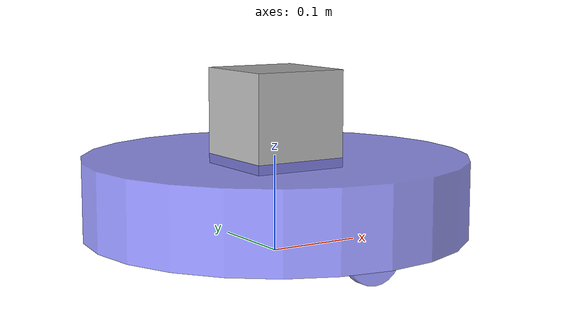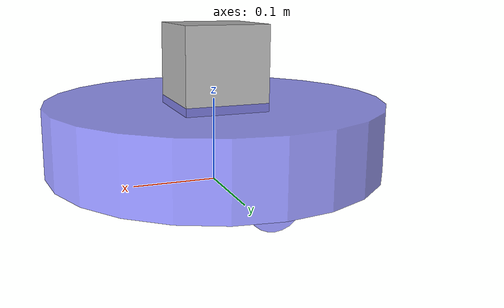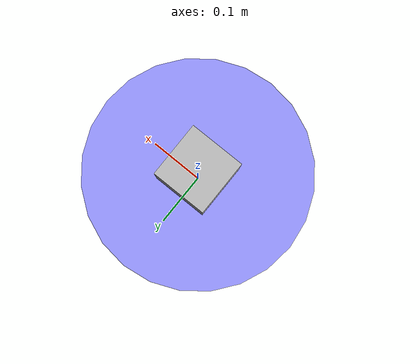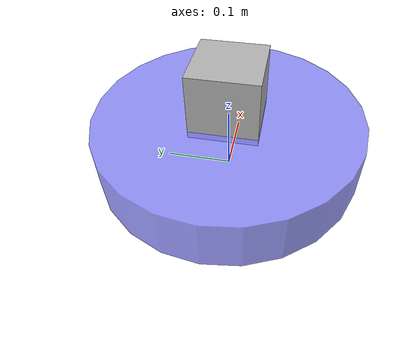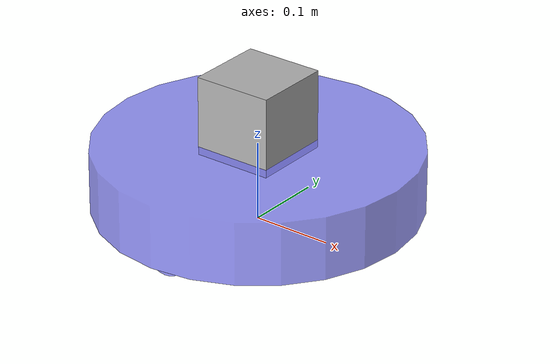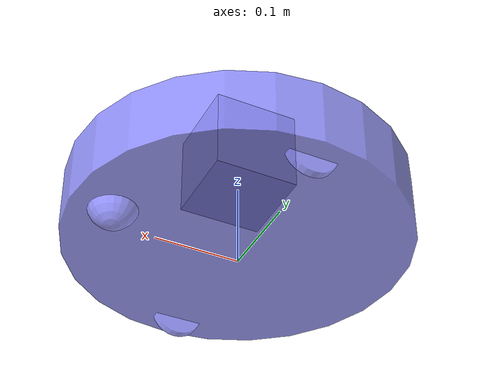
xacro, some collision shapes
<?xml version="1.0"?>
<robot name="car_robot_rplidar" xmlns:xacro="http://ros.org/wiki/xacro">

  <xacro:include filename="$(find urdf_learning)/urdf/car_chassis_2diff_gazebo.xacro" />
  <xacro:include filename="$(find urdf_learning)/urdf/sensors/rplidar_gazebo.xacro" />

  <xacro:car_chassis_2diff/>
  <xacro:rplidar_A1M8/>

  <joint name="rplidar_joint" type="fixed">
    <origin xyz="0 0 0.08" rpy="0 0 1.570796326795"/>
    <parent link="base_link"/>
    <child link="laser_link"/>
  </joint>

</robot>

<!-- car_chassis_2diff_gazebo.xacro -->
<robot name="car_chassis_2diff" xmlns:xacro="http://ros.org/wiki/xacro">

  <!-- PROPERTY LIST -->
  <xacro:property name="PI" value="3.14159265359"/>

  <!-- Below define lf, rt need "-" -->
  <xacro:property name="wheel_mass" value="0.05"/>
  <xacro:property name="wheel_radius" value="0.03"/>
  <xacro:property name="wheel_length" value="0.01"/>
  <xacro:property name="wheel_joint_x" value="0.0"/>
  <xacro:property name="wheel_joint_y" value="0.02"/>
  <xacro:property name="wheel_joint_z" value="0.0"/>

  <xacro:property name="motor_mass" value="0.1"/>
  <xacro:property name="motor_radius" value="0.01"/>
  <xacro:property name="motor_length" value="0.04"/>
  <xacro:property name="motor_joint_x" value="0"/>
  <xacro:property name="motor_joint_y" value="0.15"/>
  <xacro:property name="motor_joint_z" value="-0.03"/>

  <xacro:property name="caster_mass" value="0.05"/>
  <xacro:property name="caster_radius" value="0.03"/>
  <xacro:property name="caster_joint_x" value="0.15"/>
  <xacro:property name="caster_joint_y" value="0"/>
  <xacro:property name="caster_joint_z" value="-0.03"/>

  <xacro:property name="base_mass" value="0.3"/>
  <xacro:property name="base_radius" value="0.2"/>
  <xacro:property name="base_length" value="0.08"/>

  <!-- Defining the colors used in this robot -->
  <material name="blue">
    <color rgba="0.5 0.5 1 0.8"/>
  </material>

  <!-- Inertial matrix solution -->>
  <xacro:macro name="sphere_inertial" params="m r">
    <inertial>
      <mass value="${m}"/>
      <inertia ixx="${2*m*r*r/5}" ixy="0" ixz="0"
               iyy="${2*m*r*r/5}" iyz="0" izz="${2*m*r*r/5}"/>
    </inertial>
  </xacro:macro>

  <xacro:macro name="cylinder_inertial" params="m r h">
    <inertial>
      <mass value="${m}"/>
      <inertia ixx="${m*(3*r*r+h*h)/12}" ixy="0" ixz="0"
               iyy="${m*(3*r*r+h*h)/12}" iyz="0" izz="${m*r*r/2}"/>
    </inertial>
  </xacro:macro>

  <xacro:macro name="box_inertial" params="m x y z">
    <inertial>
      <mass value="${m}"/>
      <inertia ixx="${m*(y*y+z*z)/12}" ixy="0" ixz="0"
               iyy="${m*(x*x+z*z)/12}" iyz="0" izz="${m*(x*x+y*y)/12}"/>
    </inertial>
  </xacro:macro>

  <!-- Macro for robot base -->
  <xacro:macro name="base" >
    <link name="base_link">
      <visual>
        <origin xyz="0 0 0" rpy="0 0 0"/>
        <geometry>
          <cylinder radius="${base_radius}" length="${base_length}"/>
        </geometry>
        <material name="blue"/>
      </visual>

      <collision>
        <origin xyz="0 0 0" rpy="0 0 0"/>
        <geometry>
          <cylinder radius="${base_radius}" length="${base_length}"/>
        </geometry>
        <material name="blue"/>
      </collision>

      <xacro:cylinder_inertial m="${base_mass}" r="${base_radius}" h="${base_length}"/>
    </link>

    <gazebo reference="base_link">
      <material>Gazebo/Orange</material>
    </gazebo>

  </xacro:macro>

  <!-- Macro for robot caster -->
  <xacro:macro name="caster">
    <joint name="caster_joint" type="fixed">
      <origin xyz="${caster_joint_x} ${caster_joint_y} ${caster_joint_z}" rpy="0 0 0"/>
      <parent link="base_link"/>
      <child link="caster_link"/>
    </joint>

    <link name="caster_link">
      <visual>
        <origin xyz="0 0 0" rpy="0 0 0"/>
        <geometry>
          <sphere radius="${caster_radius}"/>
        </geometry>
        <material name="blue"/>
      </visual>

      <collision>
        <origin xyz="0 0 0" rpy="0 0 0"/>
        <geometry>
          <sphere radius="${caster_radius}"/>
        </geometry>
        <material name="blue"/>
      </collision>

      <xacro:sphere_inertial m="${caster_mass}" r="${caster_radius}"/>
    </link>

    <gazebo reference="caster_link">
      <material>Gazebo/Blue</material>
    </gazebo>

  </xacro:macro>

  <!-- Macro for robot motor -->
  <xacro:macro name="motor" params="loc_prefix l_r">
    <joint name="${loc_prefix}_motor_joint" type="fixed">
      <origin xyz="${motor_joint_x} ${l_r*motor_joint_y} ${motor_joint_z}" rpy="0 0 0"/>
      <parent link="base_link"/>
      <child link="${loc_prefix}_motor_link"/>
    </joint>

    <link name="${loc_prefix}_motor_link">
      <visual>
        <origin xyz="0 0 0" rpy="${l_r*PI/2} 0 0"/>
        <geometry>
          <cylinder radius="${motor_radius}" length="${motor_length}"/>
        </geometry>
        <material name="blue"/>
      </visual>

      <collision>
        <origin xyz="0 0 0" rpy="${l_r*PI/2} 0 0"/>
        <geometry>
          <cylinder radius="${motor_radius}" length="${motor_length}"/>
        </geometry>
        <material name="blue"/>
      </collision>

      <xacro:cylinder_inertial m="${motor_mass}" r="${motor_radius}" h="${motor_length}"/>
    </link>

    <gazebo reference="${loc_prefix}_motor_link">
      <material>Gazebo/Red</material>
    </gazebo>

  </xacro:macro>

  <!-- Macro for robot wheel -->
  <xacro:macro name="wheel" params="loc_prefix l_r">
    <joint name="${loc_prefix}_wheel_joint" type="continuous">
      <origin xyz="${wheel_joint_x} ${l_r*wheel_joint_y} ${wheel_joint_z}" rpy="0 0 0"/>
      <parent link="${loc_prefix}_motor_link"/>
      <child link="${loc_prefix}_wheel_link"/>
      <axis xyz="0 1 0"/>
    </joint>

    <link name="${loc_prefix}_wheel_link">
      <visual>
        <origin xyz="0 0 0" rpy="${l_r*PI/2} 0 0"/>
        <geometry>
          <cylinder radius="${wheel_radius}" length="${wheel_length}"/>
        </geometry>
        <material name="blue"/>
      </visual>

      <collision>
        <origin xyz="0 0 0" rpy="${l_r*PI/2} 0 0"/>
        <geometry>
          <cylinder radius="${wheel_radius}" length="${wheel_length}"/>
        </geometry>
      </collision>

      <xacro:cylinder_inertial m="${wheel_mass}" r="${wheel_radius}" h="${wheel_length}"/>
    </link>

    <gazebo reference="${loc_prefix}_wheel_link">
      <material>Gazebo/Orange</material>
    </gazebo>

    <!-- Connect wheel to motor -->
    <transmission name="${loc_prefix}_wheel_trans">
      <type>transmission_interface/SimpleTransmission</type>
      <actuator name="${loc_prefix}_motor">
        <mechanicalReduction>1</mechanicalReduction>
      </actuator>
      <joint name="${loc_prefix}_wheel_joint">
        <handwareInterface>VelocityJointInterface</handwareInterface>
      </joint>
    </transmission>

    <xacro:motor loc_prefix="${loc_prefix}" l_r="${l_r}"/>
  </xacro:macro>

  <xacro:macro name="car_chassis_2diff">
    <!-- Make footprint as root -->
    <link name="base_footprint">
      <visual>
        <origin xyz="0 0 0" rpy="0 0 0"/>
        <geometry>
          <box size="0.001 0.001 0.001"/>
        </geometry>
      </visual>
    </link>
    <gazebo reference="base_footprint">
      <turnGravityOff>false</turnGravityOff>
    </gazebo>
    <joint name="base_footprint_joint" type="fixed">
      <origin xyz="0 0 ${wheel_radius-wheel_joint_z-motor_joint_z}" rpy="0 0 0"/>
      <parent link="base_footprint"/>
      <child link="base_link"/>
    </joint>

    <!-- Make a 2diff car chassis -->
    <xacro:base />
    <xacro:wheel loc_prefix="lf" l_r="1"/>
    <xacro:wheel loc_prefix="rt" l_r="-1"/>
    <xacro:caster />

    <!-- Controller -->
    <gazebo>
      <plugin name="differential_drive_controller" filename="libgazebo_ros_diff_drive.so">

        <updateRate>100</updateRate>
        <leftJoint>lf_wheel_joint</leftJoint>
        <rightJoint>rt_wheel_joint</rightJoint>
        <wheelSeparation>${2*(motor_joint_y+wheel_joint_y)}</wheelSeparation>
        <wheelDiameter>${2*wheel_radius}</wheelDiameter>
        <wheelAcceleration>1.0</wheelAcceleration>
        <wheelTorque>5</wheelTorque>
        <commandTopic>cmd_vel</commandTopic>
        <odometryFrame>odom</odometryFrame>
        <robotBaseFrame>base_footprint</robotBaseFrame>
        <rosDebugLevel>na</rosDebugLevel>
        <odometryTopic>odom</odometryTopic>
        <publishWheelTF>false</publishWheelTF>
        <publishOdomTF>true</publishOdomTF>
        <publishWheelJointState>false</publishWheelJointState>
        <odometrySource>world</odometrySource>
        <publishTf>1</publishTf>
      </plugin>
    </gazebo>
  </xacro:macro>

</robot>

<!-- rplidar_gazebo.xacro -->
<robot xmlns:xacro="http://www.ros.org/wiki/xacro">

  <xacro:property name="A1M8_size" value="0.1"/>
  <xacro:property name="A1M8_mass" value="0.2"/>

  <xacro:macro name="box_inertial" params="m x y z">
    <inertial>
      <mass value="${m}"/>
      <inertia ixx="${m*(y*y+z*z)/12}" ixy="0" ixz="0"
               iyy="${m*(x*x+z*z)/12}" iyz="0" izz="${m*(x*x+y*y)/12}"/>
    </inertial>
  </xacro:macro>

  <xacro:macro name="rplidar_A1M8">
    <link name="laser_link">
      <visual>
        <origin xyz="0.0 0.0 0.0" rpy="0.0 0.0 0.0" />
        <geometry>
          <mesh filename="package://urdf_learning/meshes/rplidar.dae" />
        </geometry>
      </visual>
      <collision>
        <origin xyz="0 0 0" rpy="0 0 0"/>
        <geometry>
          <box size="${A1M8_size} ${A1M8_size} ${A1M8_size}" />
        </geometry>
      </collision>

      <xacro:box_inertial m="${A1M8_mass}" x="${A1M8_size}" y="${A1M8_size}" z="${A1M8_size}"/>
    </link>

  </xacro:macro>

  <gazebo reference="laser_link">
    <sensor type="ray" name="A1M8">
      <pose>0 0 0 0 0 0</pose>
      <visualize>false</visualize>
      <update_rate>5.5</update_rate>
      <ray>
        <scan>
          <horizontal>
            <samples>360</samples>
            <resolution>1</resolution>
            <min_angle>-3</min_angle>
            <max_angle>3</max_angle>
          </horizontal>
        </scan>
        <range>
          <min>0.15</min>
          <max>12</max>
          <resolution>0.01</resolution>
        </range>
        <noise>
          <type>gaussian</type>
          <mean>0.0</mean>
          <stddev>0.01</stddev>
        </noise>
      </ray>
      <plugin name="gazebo_rplidar" filename="libgazebo_ros_laser.so">
        <topicName>/scan</topicName>
        <frameName>laser_link</frameName>
      </plugin>
    </sensor>
  </gazebo>

</robot>
